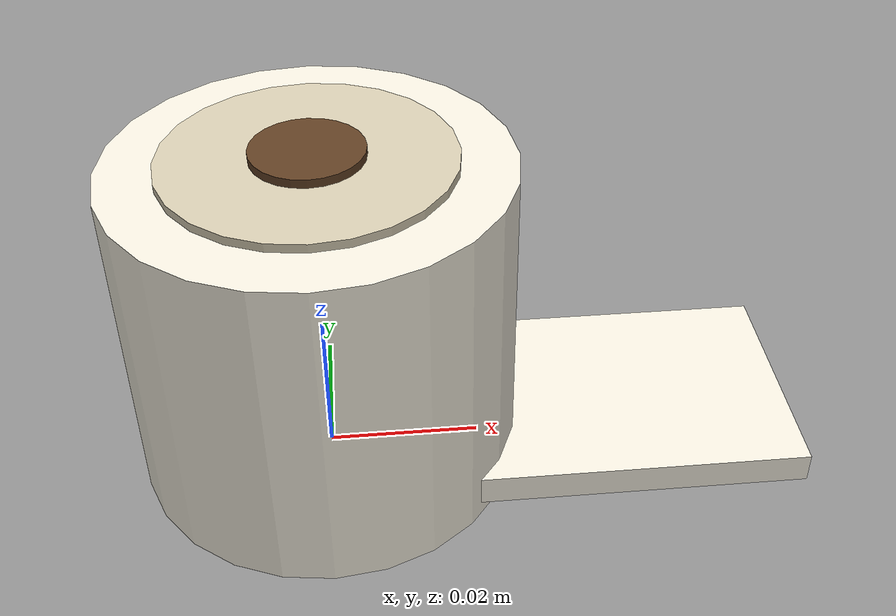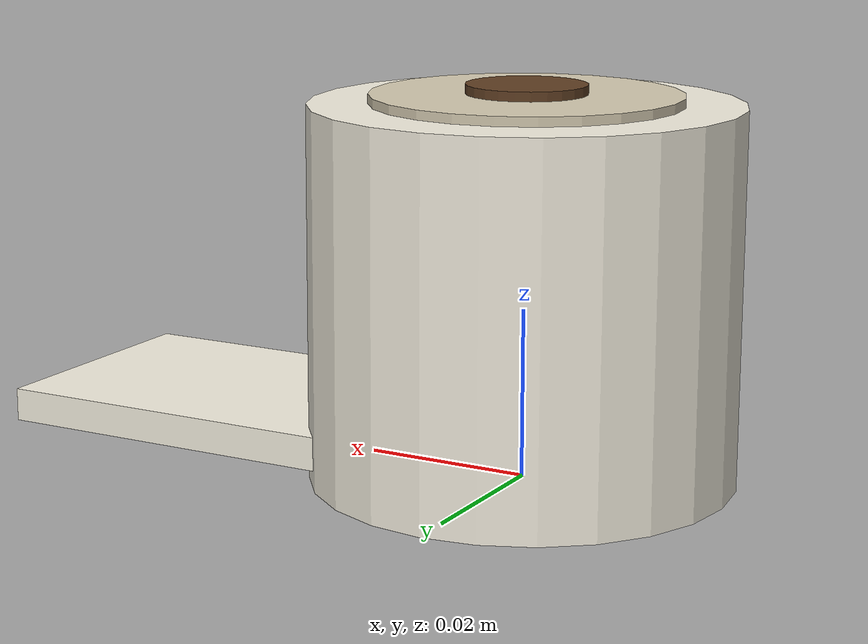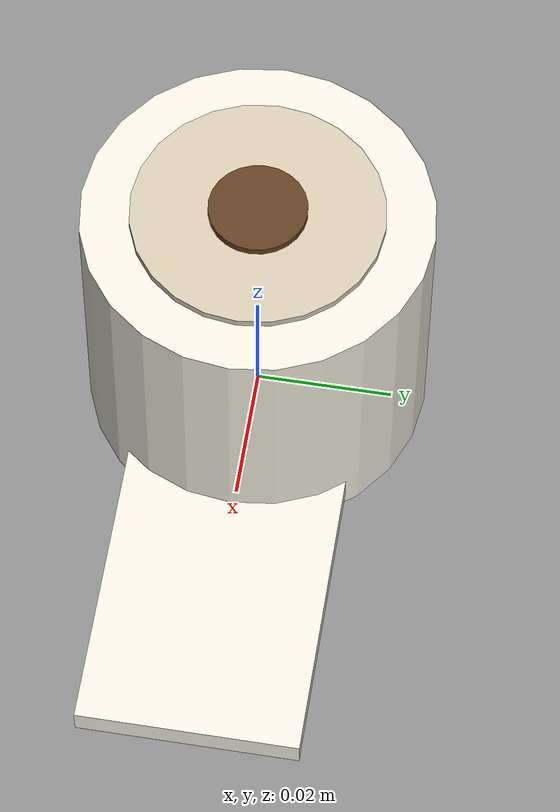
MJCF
<mujoco model="bandage_roll">
  <worldbody>
    <body>
      <body name="object">
        <geom name="bandage_collision" type="box" pos="0 0 0.022"
              size="0.024 0.024 0.022" rgba="0 0 0 0" density="900"
              friction="0.9 0.01 0.001"
              solimp="0.9 0.95 0.001" solref="0.02 1" group="0"/>
        <geom name="bandage_roll_outer" type="cylinder" pos="0 0 0.022"
              size="0.025 0.022" rgba="0.96 0.94 0.88 1"
              contype="0" conaffinity="0" group="1"/>
        <geom name="bandage_roll_middle" type="cylinder" pos="0 0 0.0443"
              size="0.018 0.0008" rgba="0.84 0.80 0.70 1"
              contype="0" conaffinity="0" group="1"/>
        <geom name="bandage_core" type="cylinder" pos="0 0 0.0452"
              size="0.007 0.001" rgba="0.38 0.25 0.14 1"
              contype="0" conaffinity="0" group="1"/>
        <geom name="bandage_tail" type="box" pos="0.038 0 0.004"
              size="0.024 0.016 0.002" rgba="0.96 0.94 0.88 1"
              contype="0" conaffinity="0" group="1"/>
      </body>
      <site name="bottom_site" pos="0 0 0" size="0.003" rgba="0 0 0 0"/>
      <site name="top_site" pos="0 0 0.046" size="0.003" rgba="0 0 0 0"/>
      <site name="horizontal_radius_site" pos="0.062 0 0.022"
            size="0.003" rgba="0 0 0 0"/>
    </body>
  </worldbody>
</mujoco>
